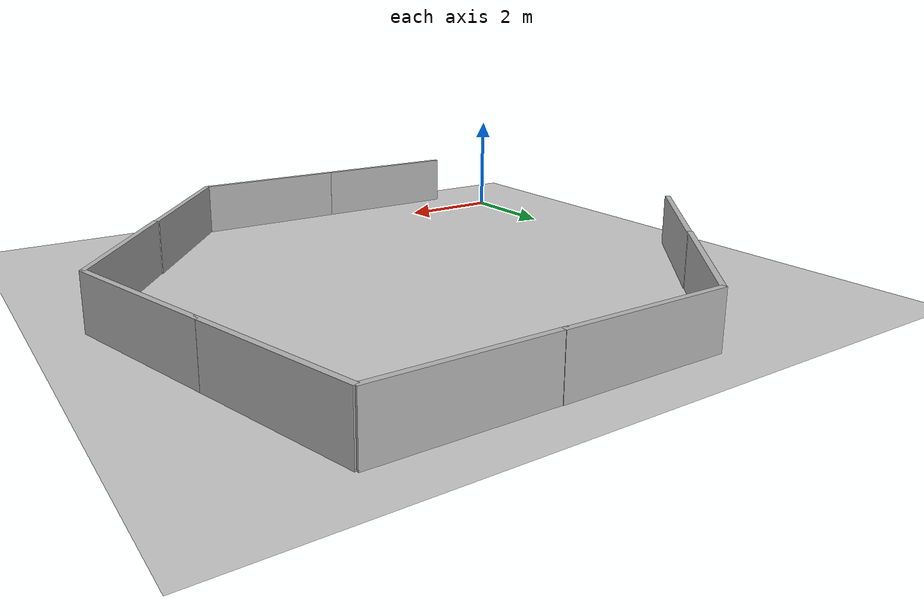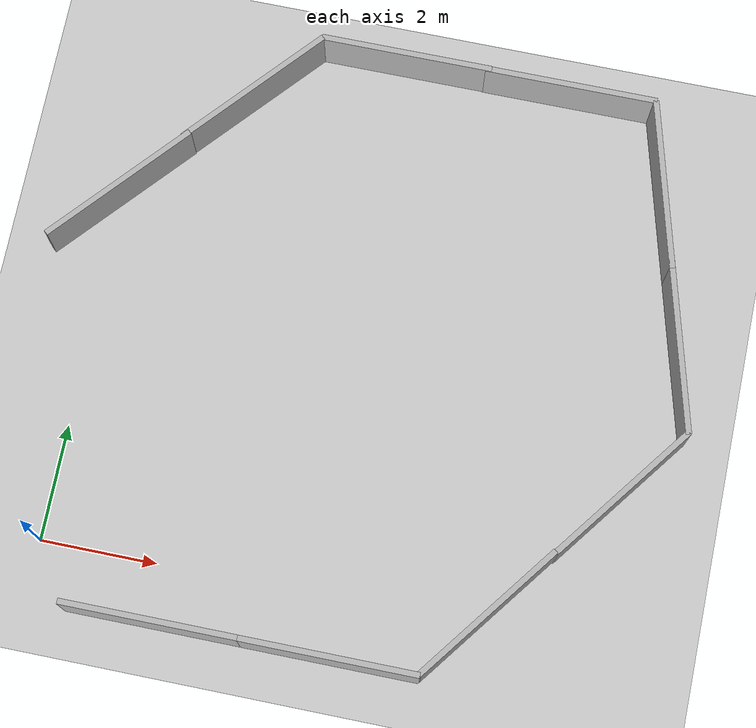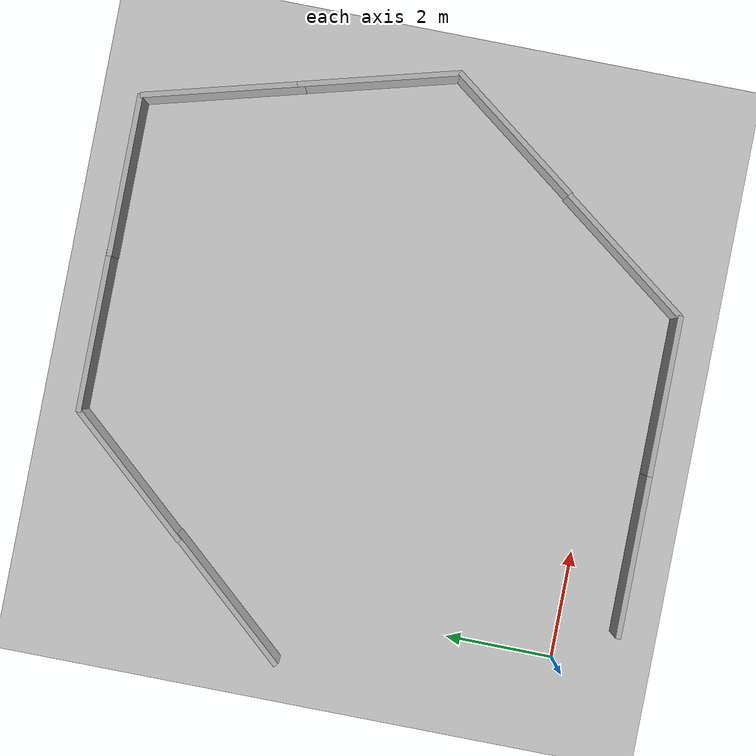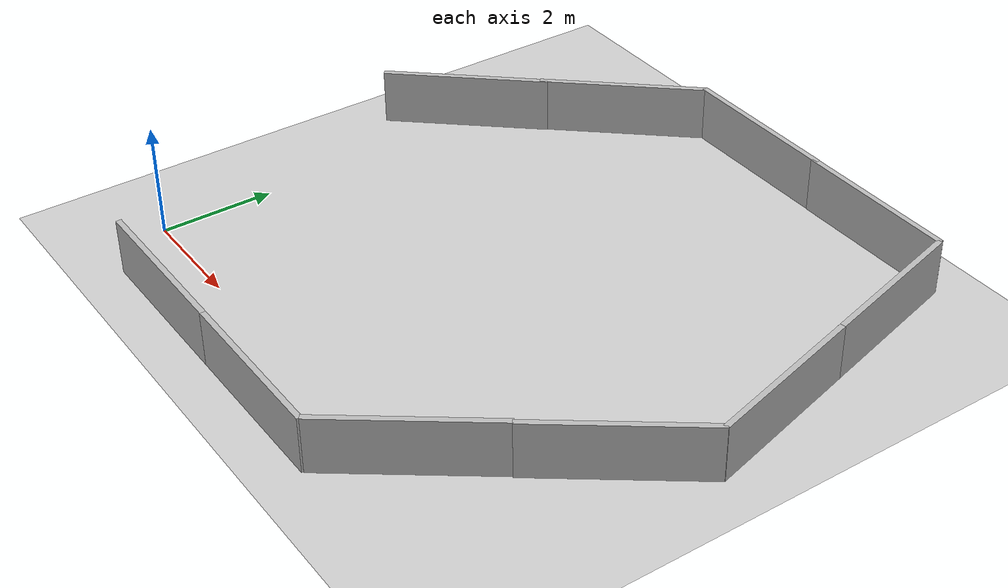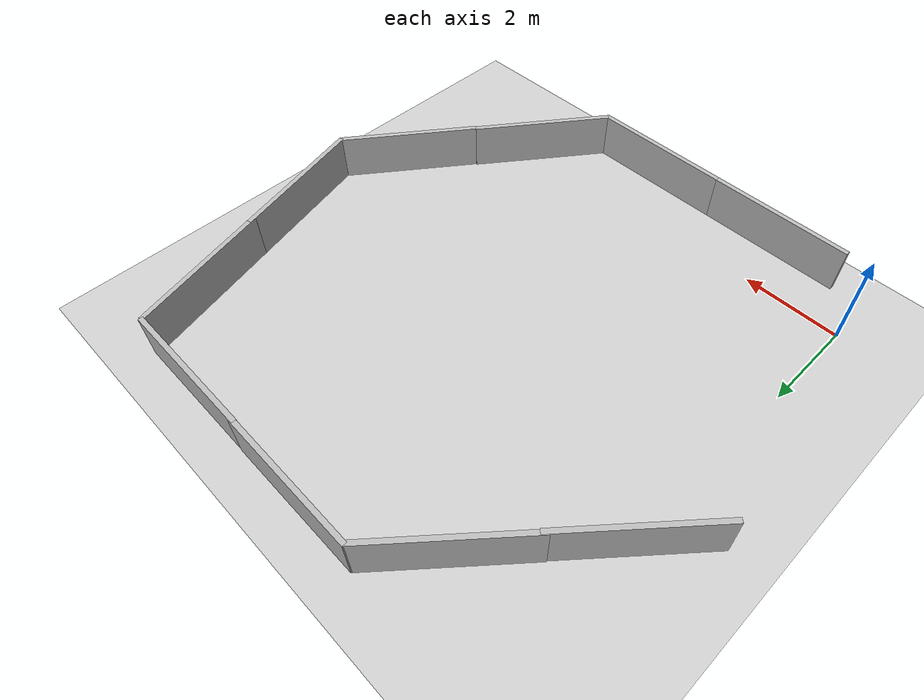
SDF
<sdf version="1.5">
 <world name="default">
  <spherical_coordinates>
   <latitude_deg>48.8789</latitude_deg>
   <longitude_deg>2.36778</longitude_deg>
   <surface_model>EARTH_WGS84</surface_model>
   <elevation>0</elevation>
   <heading_deg>0</heading_deg>
  </spherical_coordinates>
  <physics name="default_physics" default="0" type="ode">
   <real_time_update_rate>1000</real_time_update_rate>
   <max_step_size>0.001</max_step_size>
   <real_time_factor>1</real_time_factor>
   <max_contacts>20</max_contacts>
   <gravity>0 0 -9.81</gravity>
   <magnetic_field>0 2.1e-05 -4.3e-05</magnetic_field>
   <ode>
    <solver>
     <type>world</type>
     <min_step_size>0.0001</min_step_size>
     <iters>50</iters>
     <precon_iters>0</precon_iters>
     <sor>1.4</sor>
     <use_dynamic_moi_rescaling>1</use_dynamic_moi_rescaling>
    </solver>
    <constraints>
     <cfm>0</cfm>
     <erp>0.2</erp>
     <contact_max_correcting_vel>100</contact_max_correcting_vel>
     <contact_surface_layer>0.001</contact_surface_layer>
    </constraints>
   </ode>
  </physics>
  <atmosphere type="adiabatic">
   <temperature>298.15</temperature>
   <pressure>101325</pressure>
   <temperature_gradient>-0.0065</temperature_gradient>
  </atmosphere>
  <plugin name="wind" filename="libsphinx_wind.so">
   <magnitude_mean>0.0</magnitude_mean>
   <direction_mean>0.0</direction_mean>
   <elevation_mean>0.0</elevation_mean>
   <magnitude_time_for_rise>10.0</magnitude_time_for_rise>
   <direction_time_for_rise>30.0</direction_time_for_rise>
   <elevation_time_for_rise>0.0</elevation_time_for_rise>
   <magnitude_expr>val*(1+0.05*sin(2*pi*time/15))</magnitude_expr>
   <direction_expr>360*time/60</direction_expr>
   <elevation_expr>0.03*noise()</elevation_expr>
  </plugin>
  <light name="sun" type="directional">
   <pose>0 0 10 0 -0 0</pose>
   <diffuse>0.8 0.8 0.8 1</diffuse>
   <specular>0.2 0.2 0.2 1</specular>
   <attenuation>
    <range>1000</range>
    <constant>0.9</constant>
    <linear>0.01</linear>
    <quadratic>0.001</quadratic>
   </attenuation>
   <direction>-0.5 0.1 -0.9</direction>
  </light>
  <model name="ground_plane">
   <static>1</static>
   <link name="link">
    <collision name="collision">
     <geometry><plane><normal>0 0 1</normal><size>100 100</size></plane></geometry>
     <surface><friction><ode><mu>100</mu><mu2>50</mu2></ode></friction></surface>
    </collision>
    <visual name="visual">
     <cast_shadows>0</cast_shadows>
     <geometry><plane><normal>0 0 1</normal><size>100 100</size></plane></geometry>
     <material>
      <script><uri>file://media/materials/scripts/gazebo.material</uri><name>Gazebo/Grey</name></script>
     </material>
    </visual>
   </link>
  </model>
  <scene><ambient>0.4 0.4 0.4 1</ambient><background>0.7 0.7 0.7 1</background><shadows>0</shadows></scene>
  <plugin name="fwman" filename="libsphinx_fwman.so">
   <spawn_point name="default"><pose>0 0 0.2 0 0 0</pose></spawn_point>
  </plugin>
  <model name="brick_box_3x1x3">
   <static>1</static>
   <link name="chassis">
    <pose>0 0 0.5 0 -0 0</pose>
    <collision name="collision"><geometry><box><size>3 0.1 1</size></box></geometry></collision>
    <visual name="visual">
     <geometry>
      <mesh><uri>model://brick_box_3x1x3/meshes/simple_box.dae</uri><scale>3 0.1 1</scale></mesh>
     </geometry>
     <material>
      <script>
       <uri>model://brick_box_3x1x3/materials/scripts</uri>
       <uri>model://brick_box_3x1x3/materials/textures</uri>
       <name>BrickBox/Diffuse</name>
      </script>
     </material>
    </visual>
   </link>
   <pose>2.18548 -1.02179 0 0 -0 0</pose>
  </model>
  <model name="brick_box_3x1x3_clone">
   <static>1</static>
   <link name="chassis">
    <pose>0 0 0.5 0 -0 0</pose>
    <collision name="collision"><geometry><box><size>3 0.1 1</size></box></geometry></collision>
    <visual name="visual">
     <geometry>
      <mesh><uri>model://brick_box_3x1x3/meshes/simple_box.dae</uri><scale>3 0.1 1</scale></mesh>
     </geometry>
     <material>
      <script>
       <uri>model://brick_box_3x1x3/materials/scripts</uri>
       <uri>model://brick_box_3x1x3/materials/textures</uri>
       <name>BrickBox/Diffuse</name>
      </script>
     </material>
    </visual>
   </link>
   <pose>5.16484 -1.02264 0 0 -0 0</pose>
  </model>
  <model name="brick_box_3x1x3_clone_0">
   <static>1</static>
   <link name="chassis">
    <pose>0 0 0.5 0 -0 0</pose>
    <collision name="collision"><geometry><box><size>3 0.1 1</size></box></geometry></collision>
    <visual name="visual">
     <geometry>
      <mesh><uri>model://brick_box_3x1x3/meshes/simple_box.dae</uri><scale>3 0.1 1</scale></mesh>
     </geometry>
     <material>
      <script>
       <uri>model://brick_box_3x1x3/materials/scripts</uri>
       <uri>model://brick_box_3x1x3/materials/textures</uri>
       <name>BrickBox/Diffuse</name>
      </script>
     </material>
    </visual>
   </link>
   <pose>7.53965 0.184316 0 0 -0 0.928501</pose>
  </model>
  <model name="brick_box_3x1x3_clone_0_clone">
   <static>1</static>
   <link name="chassis">
    <pose>0 0 0.5 0 -0 0</pose>
    <collision name="collision"><geometry><box><size>3 0.1 1</size></box></geometry></collision>
    <visual name="visual">
     <geometry>
      <mesh><uri>model://brick_box_3x1x3/meshes/simple_box.dae</uri><scale>3 0.1 1</scale></mesh>
     </geometry>
     <material>
      <script>
       <uri>model://brick_box_3x1x3/materials/scripts</uri>
       <uri>model://brick_box_3x1x3/materials/textures</uri>
       <name>BrickBox/Diffuse</name>
      </script>
     </material>
    </visual>
   </link>
   <pose>9.34042 2.56019 0 0 -0 0.928501</pose>
  </model>
  <model name="brick_box_3x1x3_clone_0_clone_0">
   <static>1</static>
   <link name="chassis">
    <pose>0 0 0.5 0 -0 0</pose>
    <collision name="collision"><geometry><box><size>3 0.1 1</size></box></geometry></collision>
    <visual name="visual">
     <geometry>
      <mesh><uri>model://brick_box_3x1x3/meshes/simple_box.dae</uri><scale>3 0.1 1</scale></mesh>
     </geometry>
     <material>
      <script>
       <uri>model://brick_box_3x1x3/materials/scripts</uri>
       <uri>model://brick_box_3x1x3/materials/textures</uri>
       <name>BrickBox/Diffuse</name>
      </script>
     </material>
    </visual>
   </link>
   <pose>9.84812 5.17523 0 0 -0 1.83074</pose>
  </model>
  <model name="brick_box_3x1x3_clone_0_clone_0_clone">
   <static>1</static>
   <link name="chassis">
    <pose>0 0 0.5 0 -0 0</pose>
    <collision name="collision"><geometry><box><size>3 0.1 1</size></box></geometry></collision>
    <visual name="visual">
     <geometry>
      <mesh><uri>model://brick_box_3x1x3/meshes/simple_box.dae</uri><scale>3 0.1 1</scale></mesh>
     </geometry>
     <material>
      <script>
       <uri>model://brick_box_3x1x3/materials/scripts</uri>
       <uri>model://brick_box_3x1x3/materials/textures</uri>
       <name>BrickBox/Diffuse</name>
      </script>
     </material>
    </visual>
   </link>
   <pose>9.1115 7.94022 0 0 -0 1.83074</pose>
  </model>
  <model name="brick_box_3x1x3_clone_clone">
   <static>1</static>
   <link name="chassis">
    <pose>0 0 0.5 0 -0 0</pose>
    <collision name="collision"><geometry><box><size>3 0.1 1</size></box></geometry></collision>
    <visual name="visual">
     <geometry>
      <mesh><uri>model://brick_box_3x1x3/meshes/simple_box.dae</uri><scale>3 0.1 1</scale></mesh>
     </geometry>
     <material>
      <script>
       <uri>model://brick_box_3x1x3/materials/scripts</uri>
       <uri>model://brick_box_3x1x3/materials/textures</uri>
       <name>BrickBox/Diffuse</name>
      </script>
     </material>
    </visual>
   </link>
   <pose>7.24794 9.38739 0 0 -0 0</pose>
  </model>
  <model name="brick_box_3x1x3_clone_clone_0">
   <static>1</static>
   <link name="chassis">
    <pose>0 0 0.5 0 -0 0</pose>
    <collision name="collision"><geometry><box><size>3 0.1 1</size></box></geometry></collision>
    <visual name="visual">
     <geometry>
      <mesh><uri>model://brick_box_3x1x3/meshes/simple_box.dae</uri><scale>3 0.1 1</scale></mesh>
     </geometry>
     <material>
      <script>
       <uri>model://brick_box_3x1x3/materials/scripts</uri>
       <uri>model://brick_box_3x1x3/materials/textures</uri>
       <name>BrickBox/Diffuse</name>
      </script>
     </material>
    </visual>
   </link>
   <pose>4.35564 9.39581 0 0 -0 0</pose>
  </model>
  <model name="brick_box_3x1x3_clone_clone_1">
   <static>1</static>
   <link name="chassis">
    <pose>0 0 0.5 0 -0 0</pose>
    <collision name="collision"><geometry><box><size>3 0.1 1</size></box></geometry></collision>
    <visual name="visual">
     <geometry>
      <mesh><uri>model://brick_box_3x1x3/meshes/simple_box.dae</uri><scale>3 0.1 1</scale></mesh>
     </geometry>
     <material>
      <script>
       <uri>model://brick_box_3x1x3/materials/scripts</uri>
       <uri>model://brick_box_3x1x3/materials/textures</uri>
       <name>BrickBox/Diffuse</name>
      </script>
     </material>
    </visual>
   </link>
   <pose>1.89216 8.26723 0 0 -0 0.848928</pose>
  </model>
  <model name="brick_box_3x1x3_clone_clone_1_clone">
   <static>1</static>
   <link name="chassis">
    <pose>0 0 0.5 0 -0 0</pose>
    <collision name="collision"><geometry><box><size>3 0.1 1</size></box></geometry></collision>
    <visual name="visual">
     <geometry>
      <mesh><uri>model://brick_box_3x1x3/meshes/simple_box.dae</uri><scale>3 0.1 1</scale></mesh>
     </geometry>
     <material>
      <script>
       <uri>model://brick_box_3x1x3/materials/scripts</uri>
       <uri>model://brick_box_3x1x3/materials/textures</uri>
       <name>BrickBox/Diffuse</name>
      </script>
     </material>
    </visual>
   </link>
   <pose>0.012429 6.11257 0 0 -0 0.848928</pose>
  </model>
 </world>
</sdf>
